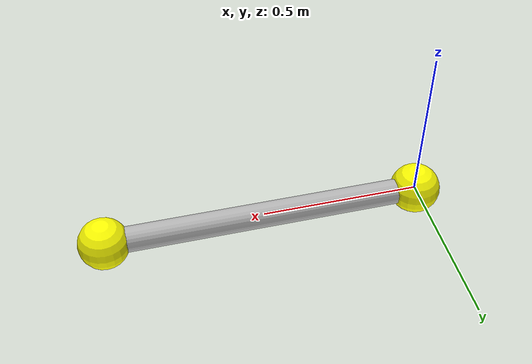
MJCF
<mujoco model="1DOF_Planar_Robot">

  <compiler inertiafromgeom = "auto" angle = "radian"/>

   <!-- (semi-) implicit Euler method was used for the integrator with time step of 0.1ms -->
	<option timestep='0.0001' iterations='50' integrator='Euler' collision='all' gravity="0 0 0"/>

  <asset>
    <!-- Texture of the surrounding sky box
         setting everything as white-ish color for better visualization -->
     <texture type="skybox"
              builtin="flat"
              rgb1="1 1 1"
              rgb2="1 1 1"
              width="100"
              height="100"/>

     <!-- Joint and Limb Color -->
     <material name = "JointColor"     rgba = "1.0 1.0 0.0 1.0"/>
     <material name = "LimbColor"      rgba = "0.7 0.7 0.7 1.0"/>

  </asset>

  <worldbody>

		<body name='body1' pos='0 0 0' euler='0 0 0'>
      <joint name='joint1' ref='0' type='hinge' stiffness='0' pos='0 0 0' axis='0 0 1' />
			<inertial pos='0.5 0 0' mass='1' diaginertia='1 1 1'/>
			<geom name='geom1' type='sphere' pos='0 0 0' material='JointColor' size='0.08' mass='0'/>
			<geom type='cylinder' fromto='0 0 0 1 0 0'   material='LimbColor'  size='0.04' mass='0'/>
      <geom name='geom2' type='sphere' pos='1 0 0' material='JointColor' size='0.08' mass='0'/>
      <site name="site_end_effector" pos='1 0 0'/>
  </body>

  </worldbody>

  <actuator>
		  <motor joint='joint1' name='motor_joint1' forcelimited='false'/>
  </actuator>

</mujoco>
